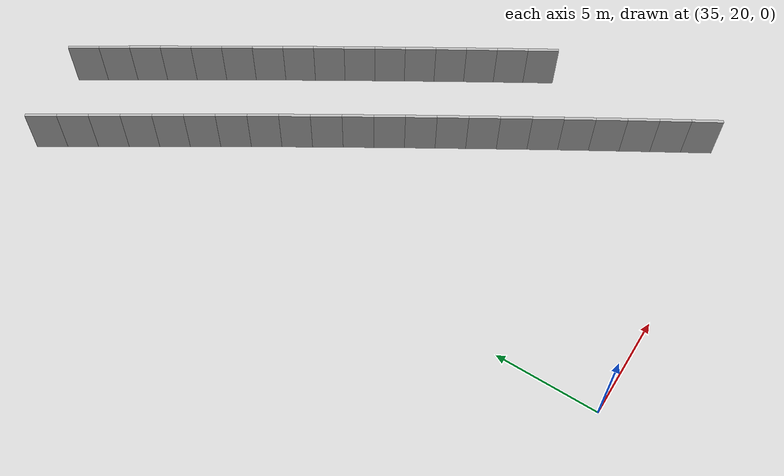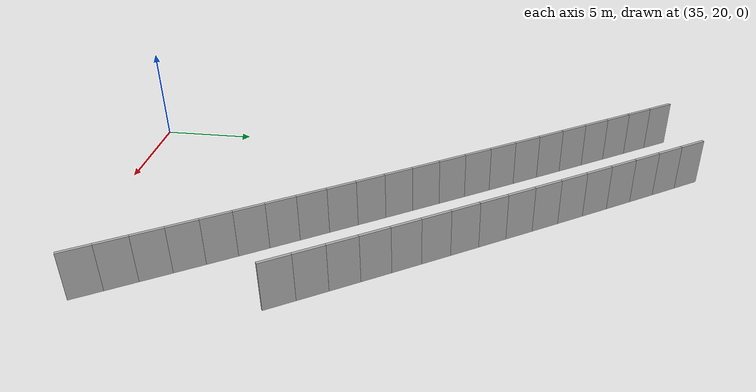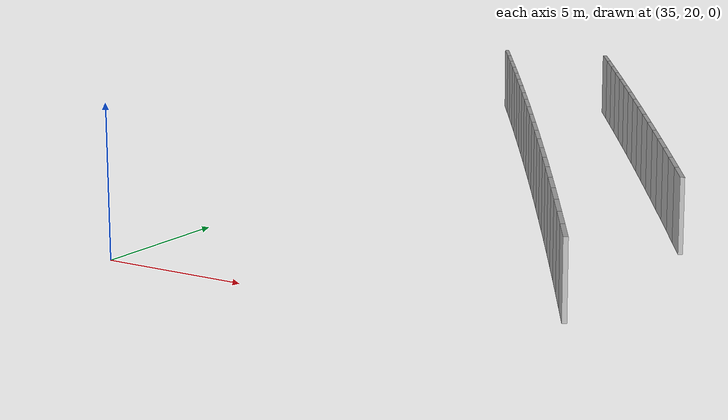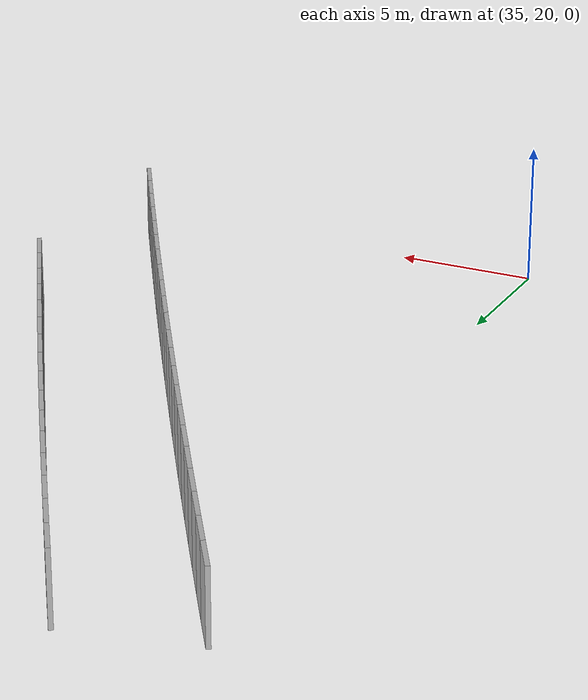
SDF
<?xml version="1.0" ?>
<sdf version="1.6">
  <model name="sps_4237">
    <pose frame="">0 0 0 0 -0 0</pose>
    <static>1</static>
    <self_collide>0</self_collide>
    <allow_auto_disable>0</allow_auto_disable>
    <link name="Wall10263">
      <kinematic>0</kinematic>
      <gravity>1</gravity>
      <self_collide>0</self_collide>
      <collision name="collision">
        <geometry>
          <box>
            <size>1.49663 0.15 2.5</size>
          </box>
        </geometry>
        <pose frame="">0 0 0 0 -0 0</pose>
      </collision>
      <visual name="visual">
        <geometry>
          <box>
            <size>1.49663 0.15 2.5</size>
          </box>
        </geometry>
        <pose frame="">0 0 0 0 -0 0</pose>
        <cast_shadows>1</cast_shadows>
        <transparency>0.0</transparency>
      </visual>
      <pose frame="">49.7465 22.1384 1.25 0 -0 2.11117</pose>
    </link>
    <link name="Wall10264">
      <kinematic>0</kinematic>
      <gravity>1</gravity>
      <self_collide>0</self_collide>
      <collision name="collision">
        <geometry>
          <box>
            <size>1.4965 0.15 2.5</size>
          </box>
        </geometry>
        <pose frame="">0 0 0 0 -0 0</pose>
      </collision>
      <visual name="visual">
        <geometry>
          <box>
            <size>1.4965 0.15 2.5</size>
          </box>
        </geometry>
        <pose frame="">0 0 0 0 -0 0</pose>
        <cast_shadows>1</cast_shadows>
        <transparency>0.0</transparency>
      </visual>
      <pose frame="">48.9755 23.4211 1.25 0 -0 2.11285</pose>
    </link>
    <link name="Wall10265">
      <kinematic>0</kinematic>
      <gravity>1</gravity>
      <self_collide>0</self_collide>
      <collision name="collision">
        <geometry>
          <box>
            <size>1.49658 0.15 2.5</size>
          </box>
        </geometry>
        <pose frame="">0 0 0 0 -0 0</pose>
      </collision>
      <visual name="visual">
        <geometry>
          <box>
            <size>1.49658 0.15 2.5</size>
          </box>
        </geometry>
        <pose frame="">0 0 0 0 -0 0</pose>
        <cast_shadows>1</cast_shadows>
        <transparency>0.0</transparency>
      </visual>
      <pose frame="">48.2025 24.7026 1.25 0 -0 2.1142</pose>
    </link>
    <link name="Wall10266">
      <kinematic>0</kinematic>
      <gravity>1</gravity>
      <self_collide>0</self_collide>
      <collision name="collision">
        <geometry>
          <box>
            <size>1.49636 0.15 2.5</size>
          </box>
        </geometry>
        <pose frame="">0 0 0 0 -0 0</pose>
      </collision>
      <visual name="visual">
        <geometry>
          <box>
            <size>1.49636 0.15 2.5</size>
          </box>
        </geometry>
        <pose frame="">0 0 0 0 -0 0</pose>
        <cast_shadows>1</cast_shadows>
        <transparency>0.0</transparency>
      </visual>
      <pose frame="">47.4276 25.9828 1.25 0 -0 2.116</pose>
    </link>
    <link name="Wall10267">
      <kinematic>0</kinematic>
      <gravity>1</gravity>
      <self_collide>0</self_collide>
      <collision name="collision">
        <geometry>
          <box>
            <size>1.49649 0.15 2.5</size>
          </box>
        </geometry>
        <pose frame="">0 0 0 0 -0 0</pose>
      </collision>
      <visual name="visual">
        <geometry>
          <box>
            <size>1.49649 0.15 2.5</size>
          </box>
        </geometry>
        <pose frame="">0 0 0 0 -0 0</pose>
        <cast_shadows>1</cast_shadows>
        <transparency>0.0</transparency>
      </visual>
      <pose frame="">46.6507 27.2617 1.25 0 -0 2.11748</pose>
    </link>
    <link name="Wall10268">
      <kinematic>0</kinematic>
      <gravity>1</gravity>
      <self_collide>0</self_collide>
      <collision name="collision">
        <geometry>
          <box>
            <size>1.49637 0.15 2.5</size>
          </box>
        </geometry>
        <pose frame="">0 0 0 0 -0 0</pose>
      </collision>
      <visual name="visual">
        <geometry>
          <box>
            <size>1.49637 0.15 2.5</size>
          </box>
        </geometry>
        <pose frame="">0 0 0 0 -0 0</pose>
        <cast_shadows>1</cast_shadows>
        <transparency>0.0</transparency>
      </visual>
      <pose frame="">45.8717 28.5394 1.25 0 -0 2.11915</pose>
    </link>
    <link name="Wall10269">
      <kinematic>0</kinematic>
      <gravity>1</gravity>
      <self_collide>0</self_collide>
      <collision name="collision">
        <geometry>
          <box>
            <size>1.49655 0.15 2.5</size>
          </box>
        </geometry>
        <pose frame="">0 0 0 0 -0 0</pose>
      </collision>
      <visual name="visual">
        <geometry>
          <box>
            <size>1.49655 0.15 2.5</size>
          </box>
        </geometry>
        <pose frame="">0 0 0 0 -0 0</pose>
        <cast_shadows>1</cast_shadows>
        <transparency>0.0</transparency>
      </visual>
      <pose frame="">45.0907 29.8159 1.25 0 -0 2.1206</pose>
    </link>
    <link name="Wall10270">
      <kinematic>0</kinematic>
      <gravity>1</gravity>
      <self_collide>0</self_collide>
      <collision name="collision">
        <geometry>
          <box>
            <size>1.49642 0.15 2.5</size>
          </box>
        </geometry>
        <pose frame="">0 0 0 0 -0 0</pose>
      </collision>
      <visual name="visual">
        <geometry>
          <box>
            <size>1.49642 0.15 2.5</size>
          </box>
        </geometry>
        <pose frame="">0 0 0 0 -0 0</pose>
        <cast_shadows>1</cast_shadows>
        <transparency>0.0</transparency>
      </visual>
      <pose frame="">44.3074 31.091 1.25 0 -0 2.12272</pose>
    </link>
    <link name="Wall10271">
      <kinematic>0</kinematic>
      <gravity>1</gravity>
      <self_collide>0</self_collide>
      <collision name="collision">
        <geometry>
          <box>
            <size>1.49643 0.15 2.5</size>
          </box>
        </geometry>
        <pose frame="">0 0 0 0 -0 0</pose>
      </collision>
      <visual name="visual">
        <geometry>
          <box>
            <size>1.49643 0.15 2.5</size>
          </box>
        </geometry>
        <pose frame="">0 0 0 0 -0 0</pose>
        <cast_shadows>1</cast_shadows>
        <transparency>0.0</transparency>
      </visual>
      <pose frame="">43.5221 32.3648 1.25 0 -0 2.12381</pose>
    </link>
    <link name="Wall10272">
      <kinematic>0</kinematic>
      <gravity>1</gravity>
      <self_collide>0</self_collide>
      <collision name="collision">
        <geometry>
          <box>
            <size>1.4966 0.15 2.5</size>
          </box>
        </geometry>
        <pose frame="">0 0 0 0 -0 0</pose>
      </collision>
      <visual name="visual">
        <geometry>
          <box>
            <size>1.4966 0.15 2.5</size>
          </box>
        </geometry>
        <pose frame="">0 0 0 0 -0 0</pose>
        <cast_shadows>1</cast_shadows>
        <transparency>0.0</transparency>
      </visual>
      <pose frame="">42.7349 33.6376 1.25 0 -0 2.12547</pose>
    </link>
    <link name="Wall10273">
      <kinematic>0</kinematic>
      <gravity>1</gravity>
      <self_collide>0</self_collide>
      <collision name="collision">
        <geometry>
          <box>
            <size>1.49634 0.15 2.5</size>
          </box>
        </geometry>
        <pose frame="">0 0 0 0 -0 0</pose>
      </collision>
      <visual name="visual">
        <geometry>
          <box>
            <size>1.49634 0.15 2.5</size>
          </box>
        </geometry>
        <pose frame="">0 0 0 0 -0 0</pose>
        <cast_shadows>1</cast_shadows>
        <transparency>0.0</transparency>
      </visual>
      <pose frame="">41.9459 34.9091 1.25 0 -0 2.12697</pose>
    </link>
    <link name="Wall10274">
      <kinematic>0</kinematic>
      <gravity>1</gravity>
      <self_collide>0</self_collide>
      <collision name="collision">
        <geometry>
          <box>
            <size>1.4965 0.15 2.5</size>
          </box>
        </geometry>
        <pose frame="">0 0 0 0 -0 0</pose>
      </collision>
      <visual name="visual">
        <geometry>
          <box>
            <size>1.4965 0.15 2.5</size>
          </box>
        </geometry>
        <pose frame="">0 0 0 0 -0 0</pose>
        <cast_shadows>1</cast_shadows>
        <transparency>0.0</transparency>
      </visual>
      <pose frame="">41.1547 36.1793 1.25 0 -0 2.12868</pose>
    </link>
    <link name="Wall10275">
      <kinematic>0</kinematic>
      <gravity>1</gravity>
      <self_collide>0</self_collide>
      <collision name="collision">
        <geometry>
          <box>
            <size>1.4965 0.15 2.5</size>
          </box>
        </geometry>
        <pose frame="">0 0 0 0 -0 0</pose>
      </collision>
      <visual name="visual">
        <geometry>
          <box>
            <size>1.4965 0.15 2.5</size>
          </box>
        </geometry>
        <pose frame="">0 0 0 0 -0 0</pose>
        <cast_shadows>1</cast_shadows>
        <transparency>0.0</transparency>
      </visual>
      <pose frame="">40.3615 37.4483 1.25 0 -0 2.13022</pose>
    </link>
    <link name="Wall10276">
      <kinematic>0</kinematic>
      <gravity>1</gravity>
      <self_collide>0</self_collide>
      <collision name="collision">
        <geometry>
          <box>
            <size>1.49658 0.15 2.5</size>
          </box>
        </geometry>
        <pose frame="">0 0 0 0 -0 0</pose>
      </collision>
      <visual name="visual">
        <geometry>
          <box>
            <size>1.49658 0.15 2.5</size>
          </box>
        </geometry>
        <pose frame="">0 0 0 0 -0 0</pose>
        <cast_shadows>1</cast_shadows>
        <transparency>0.0</transparency>
      </visual>
      <pose frame="">39.5663 38.7161 1.25 0 -0 2.13177</pose>
    </link>
    <link name="Wall10277">
      <kinematic>0</kinematic>
      <gravity>1</gravity>
      <self_collide>0</self_collide>
      <collision name="collision">
        <geometry>
          <box>
            <size>1.49659 0.15 2.5</size>
          </box>
        </geometry>
        <pose frame="">0 0 0 0 -0 0</pose>
      </collision>
      <visual name="visual">
        <geometry>
          <box>
            <size>1.49659 0.15 2.5</size>
          </box>
        </geometry>
        <pose frame="">0 0 0 0 -0 0</pose>
        <cast_shadows>1</cast_shadows>
        <transparency>0.0</transparency>
      </visual>
      <pose frame="">38.7692 39.9827 1.25 0 -0 2.13331</pose>
    </link>
    <link name="Wall10278">
      <kinematic>0</kinematic>
      <gravity>1</gravity>
      <self_collide>0</self_collide>
      <collision name="collision">
        <geometry>
          <box>
            <size>1.49642 0.15 2.5</size>
          </box>
        </geometry>
        <pose frame="">0 0 0 0 -0 0</pose>
      </collision>
      <visual name="visual">
        <geometry>
          <box>
            <size>1.49642 0.15 2.5</size>
          </box>
        </geometry>
        <pose frame="">0 0 0 0 -0 0</pose>
        <cast_shadows>1</cast_shadows>
        <transparency>0.0</transparency>
      </visual>
      <pose frame="">37.9701 41.248 1.25 0 -0 2.13488</pose>
    </link>
    <link name="Wall10279">
      <kinematic>0</kinematic>
      <gravity>1</gravity>
      <self_collide>0</self_collide>
      <collision name="collision">
        <geometry>
          <box>
            <size>1.49658 0.15 2.5</size>
          </box>
        </geometry>
        <pose frame="">0 0 0 0 -0 0</pose>
      </collision>
      <visual name="visual">
        <geometry>
          <box>
            <size>1.49658 0.15 2.5</size>
          </box>
        </geometry>
        <pose frame="">0 0 0 0 -0 0</pose>
        <cast_shadows>1</cast_shadows>
        <transparency>0.0</transparency>
      </visual>
      <pose frame="">37.1689 42.512 1.25 0 -0 2.1365</pose>
    </link>
    <link name="Wall10280">
      <kinematic>0</kinematic>
      <gravity>1</gravity>
      <self_collide>0</self_collide>
      <collision name="collision">
        <geometry>
          <box>
            <size>1.49648 0.15 2.5</size>
          </box>
        </geometry>
        <pose frame="">0 0 0 0 -0 0</pose>
      </collision>
      <visual name="visual">
        <geometry>
          <box>
            <size>1.49648 0.15 2.5</size>
          </box>
        </geometry>
        <pose frame="">0 0 0 0 -0 0</pose>
        <cast_shadows>1</cast_shadows>
        <transparency>0.0</transparency>
      </visual>
      <pose frame="">36.3657 43.7747 1.25 0 -0 2.13814</pose>
    </link>
    <link name="Wall10281">
      <kinematic>0</kinematic>
      <gravity>1</gravity>
      <self_collide>0</self_collide>
      <collision name="collision">
        <geometry>
          <box>
            <size>1.49653 0.15 2.5</size>
          </box>
        </geometry>
        <pose frame="">0 0 0 0 -0 0</pose>
      </collision>
      <visual name="visual">
        <geometry>
          <box>
            <size>1.49653 0.15 2.5</size>
          </box>
        </geometry>
        <pose frame="">0 0 0 0 -0 0</pose>
        <cast_shadows>1</cast_shadows>
        <transparency>0.0</transparency>
      </visual>
      <pose frame="">35.5605 45.0361 1.25 0 -0 2.13972</pose>
    </link>
    <link name="Wall10282">
      <kinematic>0</kinematic>
      <gravity>1</gravity>
      <self_collide>0</self_collide>
      <collision name="collision">
        <geometry>
          <box>
            <size>1.4964 0.15 2.5</size>
          </box>
        </geometry>
        <pose frame="">0 0 0 0 -0 0</pose>
      </collision>
      <visual name="visual">
        <geometry>
          <box>
            <size>1.4964 0.15 2.5</size>
          </box>
        </geometry>
        <pose frame="">0 0 0 0 -0 0</pose>
        <cast_shadows>1</cast_shadows>
        <transparency>0.0</transparency>
      </visual>
      <pose frame="">34.7533 46.2962 1.25 0 -0 2.14132</pose>
    </link>
    <link name="Wall10283">
      <kinematic>0</kinematic>
      <gravity>1</gravity>
      <self_collide>0</self_collide>
      <collision name="collision">
        <geometry>
          <box>
            <size>1.49662 0.15 2.5</size>
          </box>
        </geometry>
        <pose frame="">0 0 0 0 -0 0</pose>
      </collision>
      <visual name="visual">
        <geometry>
          <box>
            <size>1.49662 0.15 2.5</size>
          </box>
        </geometry>
        <pose frame="">0 0 0 0 -0 0</pose>
        <cast_shadows>1</cast_shadows>
        <transparency>0.0</transparency>
      </visual>
      <pose frame="">33.9442 47.5551 1.25 0 -0 2.14283</pose>
    </link>
    <link name="Wall10284">
      <kinematic>0</kinematic>
      <gravity>1</gravity>
      <self_collide>0</self_collide>
      <collision name="collision">
        <geometry>
          <box>
            <size>1.49646 0.15 2.5</size>
          </box>
        </geometry>
        <pose frame="">0 0 0 0 -0 0</pose>
      </collision>
      <visual name="visual">
        <geometry>
          <box>
            <size>1.49646 0.15 2.5</size>
          </box>
        </geometry>
        <pose frame="">0 0 0 0 -0 0</pose>
        <cast_shadows>1</cast_shadows>
        <transparency>0.0</transparency>
      </visual>
      <pose frame="">33.133 48.8127 1.25 0 -0 2.14455</pose>
    </link>
    <link name="Wall10865">
      <kinematic>0</kinematic>
      <gravity>1</gravity>
      <self_collide>0</self_collide>
      <collision name="collision">
        <geometry>
          <box>
            <size>1.50266 0.15 2.5</size>
          </box>
        </geometry>
        <pose frame="">0 0 0 0 -0 0</pose>
      </collision>
      <visual name="visual">
        <geometry>
          <box>
            <size>1.50266 0.15 2.5</size>
          </box>
        </geometry>
        <pose frame="">0 0 0 0 -0 0</pose>
        <cast_shadows>1</cast_shadows>
        <transparency>0.0</transparency>
      </visual>
      <pose frame="">49.4046 30.6975 1.25 0 -0 2.11954</pose>
    </link>
    <link name="Wall10866">
      <kinematic>0</kinematic>
      <gravity>1</gravity>
      <self_collide>0</self_collide>
      <collision name="collision">
        <geometry>
          <box>
            <size>1.50302 0.15 2.5</size>
          </box>
        </geometry>
        <pose frame="">0 0 0 0 -0 0</pose>
      </collision>
      <visual name="visual">
        <geometry>
          <box>
            <size>1.50302 0.15 2.5</size>
          </box>
        </geometry>
        <pose frame="">0 0 0 0 -0 0</pose>
        <cast_shadows>1</cast_shadows>
        <transparency>0.0</transparency>
      </visual>
      <pose frame="">48.6199 31.9792 1.25 0 -0 2.12078</pose>
    </link>
    <link name="Wall10867">
      <kinematic>0</kinematic>
      <gravity>1</gravity>
      <self_collide>0</self_collide>
      <collision name="collision">
        <geometry>
          <box>
            <size>1.50314 0.15 2.5</size>
          </box>
        </geometry>
        <pose frame="">0 0 0 0 -0 0</pose>
      </collision>
      <visual name="visual">
        <geometry>
          <box>
            <size>1.50314 0.15 2.5</size>
          </box>
        </geometry>
        <pose frame="">0 0 0 0 -0 0</pose>
        <cast_shadows>1</cast_shadows>
        <transparency>0.0</transparency>
      </visual>
      <pose frame="">47.8334 33.2601 1.25 0 -0 2.12216</pose>
    </link>
    <link name="Wall10868">
      <kinematic>0</kinematic>
      <gravity>1</gravity>
      <self_collide>0</self_collide>
      <collision name="collision">
        <geometry>
          <box>
            <size>1.5031 0.15 2.5</size>
          </box>
        </geometry>
        <pose frame="">0 0 0 0 -0 0</pose>
      </collision>
      <visual name="visual">
        <geometry>
          <box>
            <size>1.5031 0.15 2.5</size>
          </box>
        </geometry>
        <pose frame="">0 0 0 0 -0 0</pose>
        <cast_shadows>1</cast_shadows>
        <transparency>0.0</transparency>
      </visual>
      <pose frame="">47.0449 34.5398 1.25 0 -0 2.12389</pose>
    </link>
    <link name="Wall10869">
      <kinematic>0</kinematic>
      <gravity>1</gravity>
      <self_collide>0</self_collide>
      <collision name="collision">
        <geometry>
          <box>
            <size>1.50314 0.15 2.5</size>
          </box>
        </geometry>
        <pose frame="">0 0 0 0 -0 0</pose>
      </collision>
      <visual name="visual">
        <geometry>
          <box>
            <size>1.50314 0.15 2.5</size>
          </box>
        </geometry>
        <pose frame="">0 0 0 0 -0 0</pose>
        <cast_shadows>1</cast_shadows>
        <transparency>0.0</transparency>
      </visual>
      <pose frame="">46.2543 35.8182 1.25 0 -0 2.1254</pose>
    </link>
    <link name="Wall10870">
      <kinematic>0</kinematic>
      <gravity>1</gravity>
      <self_collide>0</self_collide>
      <collision name="collision">
        <geometry>
          <box>
            <size>1.50299 0.15 2.5</size>
          </box>
        </geometry>
        <pose frame="">0 0 0 0 -0 0</pose>
      </collision>
      <visual name="visual">
        <geometry>
          <box>
            <size>1.50299 0.15 2.5</size>
          </box>
        </geometry>
        <pose frame="">0 0 0 0 -0 0</pose>
        <cast_shadows>1</cast_shadows>
        <transparency>0.0</transparency>
      </visual>
      <pose frame="">45.4617 37.0953 1.25 0 -0 2.12709</pose>
    </link>
    <link name="Wall10871">
      <kinematic>0</kinematic>
      <gravity>1</gravity>
      <self_collide>0</self_collide>
      <collision name="collision">
        <geometry>
          <box>
            <size>1.50304 0.15 2.5</size>
          </box>
        </geometry>
        <pose frame="">0 0 0 0 -0 0</pose>
      </collision>
      <visual name="visual">
        <geometry>
          <box>
            <size>1.50304 0.15 2.5</size>
          </box>
        </geometry>
        <pose frame="">0 0 0 0 -0 0</pose>
        <cast_shadows>1</cast_shadows>
        <transparency>0.0</transparency>
      </visual>
      <pose frame="">44.667 38.3711 1.25 0 -0 2.1286</pose>
    </link>
    <link name="Wall10872">
      <kinematic>0</kinematic>
      <gravity>1</gravity>
      <self_collide>0</self_collide>
      <collision name="collision">
        <geometry>
          <box>
            <size>1.50307 0.15 2.5</size>
          </box>
        </geometry>
        <pose frame="">0 0 0 0 -0 0</pose>
      </collision>
      <visual name="visual">
        <geometry>
          <box>
            <size>1.50307 0.15 2.5</size>
          </box>
        </geometry>
        <pose frame="">0 0 0 0 -0 0</pose>
        <cast_shadows>1</cast_shadows>
        <transparency>0.0</transparency>
      </visual>
      <pose frame="">43.8704 39.6457 1.25 0 -0 2.13017</pose>
    </link>
    <link name="Wall10873">
      <kinematic>0</kinematic>
      <gravity>1</gravity>
      <self_collide>0</self_collide>
      <collision name="collision">
        <geometry>
          <box>
            <size>1.50326 0.15 2.5</size>
          </box>
        </geometry>
        <pose frame="">0 0 0 0 -0 0</pose>
      </collision>
      <visual name="visual">
        <geometry>
          <box>
            <size>1.50326 0.15 2.5</size>
          </box>
        </geometry>
        <pose frame="">0 0 0 0 -0 0</pose>
        <cast_shadows>1</cast_shadows>
        <transparency>0.0</transparency>
      </visual>
      <pose frame="">43.0717 40.9191 1.25 0 -0 2.13181</pose>
    </link>
    <link name="Wall10874">
      <kinematic>0</kinematic>
      <gravity>1</gravity>
      <self_collide>0</self_collide>
      <collision name="collision">
        <geometry>
          <box>
            <size>1.50301 0.15 2.5</size>
          </box>
        </geometry>
        <pose frame="">0 0 0 0 -0 0</pose>
      </collision>
      <visual name="visual">
        <geometry>
          <box>
            <size>1.50301 0.15 2.5</size>
          </box>
        </geometry>
        <pose frame="">0 0 0 0 -0 0</pose>
        <cast_shadows>1</cast_shadows>
        <transparency>0.0</transparency>
      </visual>
      <pose frame="">42.271 42.1912 1.25 0 -0 2.13331</pose>
    </link>
    <link name="Wall10875">
      <kinematic>0</kinematic>
      <gravity>1</gravity>
      <self_collide>0</self_collide>
      <collision name="collision">
        <geometry>
          <box>
            <size>1.50305 0.15 2.5</size>
          </box>
        </geometry>
        <pose frame="">0 0 0 0 -0 0</pose>
      </collision>
      <visual name="visual">
        <geometry>
          <box>
            <size>1.50305 0.15 2.5</size>
          </box>
        </geometry>
        <pose frame="">0 0 0 0 -0 0</pose>
        <cast_shadows>1</cast_shadows>
        <transparency>0.0</transparency>
      </visual>
      <pose frame="">41.4685 43.462 1.25 0 -0 2.13488</pose>
    </link>
    <link name="Wall10876">
      <kinematic>0</kinematic>
      <gravity>1</gravity>
      <self_collide>0</self_collide>
      <collision name="collision">
        <geometry>
          <box>
            <size>1.50295 0.15 2.5</size>
          </box>
        </geometry>
        <pose frame="">0 0 0 0 -0 0</pose>
      </collision>
      <visual name="visual">
        <geometry>
          <box>
            <size>1.50295 0.15 2.5</size>
          </box>
        </geometry>
        <pose frame="">0 0 0 0 -0 0</pose>
        <cast_shadows>1</cast_shadows>
        <transparency>0.0</transparency>
      </visual>
      <pose frame="">40.6639 44.7315 1.25 0 -0 2.13651</pose>
    </link>
    <link name="Wall10877">
      <kinematic>0</kinematic>
      <gravity>1</gravity>
      <self_collide>0</self_collide>
      <collision name="collision">
        <geometry>
          <box>
            <size>1.5031 0.15 2.5</size>
          </box>
        </geometry>
        <pose frame="">0 0 0 0 -0 0</pose>
      </collision>
      <visual name="visual">
        <geometry>
          <box>
            <size>1.5031 0.15 2.5</size>
          </box>
        </geometry>
        <pose frame="">0 0 0 0 -0 0</pose>
        <cast_shadows>1</cast_shadows>
        <transparency>0.0</transparency>
      </visual>
      <pose frame="">39.8572 45.9997 1.25 0 -0 2.13818</pose>
    </link>
    <link name="Wall10878">
      <kinematic>0</kinematic>
      <gravity>1</gravity>
      <self_collide>0</self_collide>
      <collision name="collision">
        <geometry>
          <box>
            <size>1.5031 0.15 2.5</size>
          </box>
        </geometry>
        <pose frame="">0 0 0 0 -0 0</pose>
      </collision>
      <visual name="visual">
        <geometry>
          <box>
            <size>1.5031 0.15 2.5</size>
          </box>
        </geometry>
        <pose frame="">0 0 0 0 -0 0</pose>
        <cast_shadows>1</cast_shadows>
        <transparency>0.0</transparency>
      </visual>
      <pose frame="">39.0485 47.2667 1.25 0 -0 2.13962</pose>
    </link>
    <link name="Wall10879">
      <kinematic>0</kinematic>
      <gravity>1</gravity>
      <self_collide>0</self_collide>
      <collision name="collision">
        <geometry>
          <box>
            <size>1.50302 0.15 2.5</size>
          </box>
        </geometry>
        <pose frame="">0 0 0 0 -0 0</pose>
      </collision>
      <visual name="visual">
        <geometry>
          <box>
            <size>1.50302 0.15 2.5</size>
          </box>
        </geometry>
        <pose frame="">0 0 0 0 -0 0</pose>
        <cast_shadows>1</cast_shadows>
        <transparency>0.0</transparency>
      </visual>
      <pose frame="">38.2378 48.5324 1.25 0 -0 2.14134</pose>
    </link>
    <link name="Wall10880">
      <kinematic>0</kinematic>
      <gravity>1</gravity>
      <self_collide>0</self_collide>
      <collision name="collision">
        <geometry>
          <box>
            <size>1.50304 0.15 2.5</size>
          </box>
        </geometry>
        <pose frame="">0 0 0 0 -0 0</pose>
      </collision>
      <visual name="visual">
        <geometry>
          <box>
            <size>1.50304 0.15 2.5</size>
          </box>
        </geometry>
        <pose frame="">0 0 0 0 -0 0</pose>
        <cast_shadows>1</cast_shadows>
        <transparency>0.0</transparency>
      </visual>
      <pose frame="">37.4251 49.7968 1.25 0 -0 2.14278</pose>
    </link>
  </model>
</sdf>
